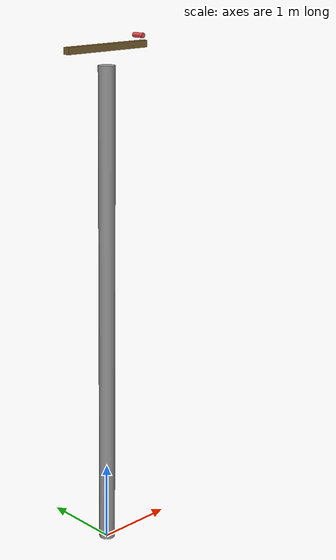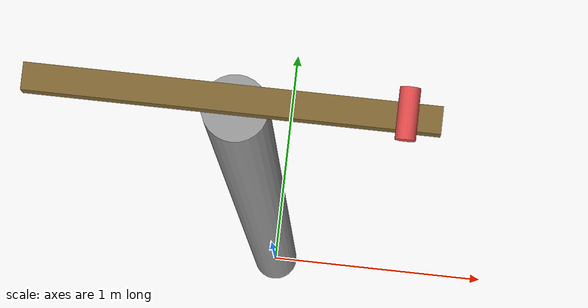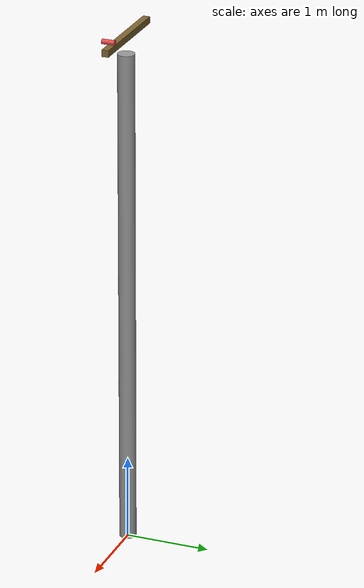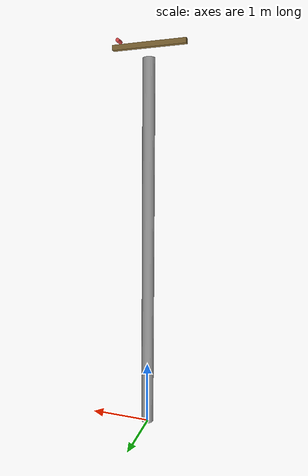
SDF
<?xml version="1.0" ?>
<!-- Electric Pole Model - 电线杆 Gazebo模型 -->
<sdf version="1.7">
  <model name="electric_pole">
    <static>true</static>
    <allow_auto_disable>true</allow_auto_disable>
    <link name="pole">
      <!-- 水泥杆 -->
      <collision name="pole_collision">
        <geometry><cylinder><radius>0.1</radius><length>6</length></cylinder></geometry>
        <pose>0 0 3 0 0 0</pose>
      </collision>
      <visual name="pole_visual">
        <geometry><cylinder><radius>0.1</radius><length>6</length></cylinder></geometry>
        <pose>0 0 3 0 0 0</pose>
        <material>
          <ambient>0.5 0.5 0.5 1</ambient>
          <diffuse>0.6 0.6 0.6 1</diffuse>
          <specular>0.1 0.1 0.1 1</specular>
        </material>
      </visual>
      <!-- 横担 -->
      <collision name="crossarm_collision">
        <geometry><box><size>1.2 0.08 0.08</size></box></geometry>
        <pose>0 0 6.2 0 0 0</pose>
      </collision>
      <visual name="crossarm_visual">
        <geometry><box><size>1.2 0.08 0.08</size></box></geometry>
        <pose>0 0 6.2 0 0 0</pose>
        <material><ambient>0.4 0.3 0.1 1</ambient><diffuse>0.5 0.4 0.2 1</diffuse></material>
      </visual>
      <!-- 绝缘子 -->
      <collision name="insulator_collision">
        <geometry><cylinder><radius>0.03</radius><length>0.15</length></cylinder></geometry>
        <pose>0.5 0 6.3 1.5708 0 0</pose>
      </collision>
      <visual name="insulator_visual">
        <geometry><cylinder><radius>0.03</radius><length>0.15</length></cylinder></geometry>
        <pose>0.5 0 6.3 1.5708 0 0</pose>
        <material><ambient>0.8 0.2 0.2 1</ambient><diffuse>0.9 0.3 0.3 1</diffuse></material>
      </visual>
    </link>
  </model>
</sdf>
